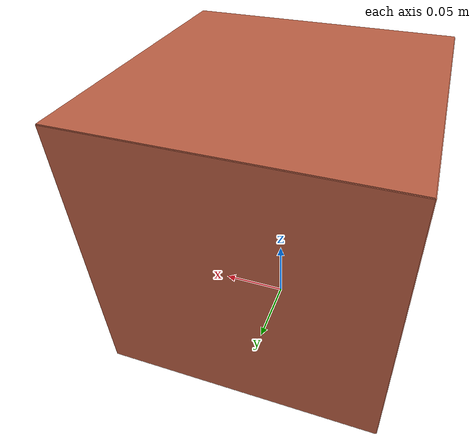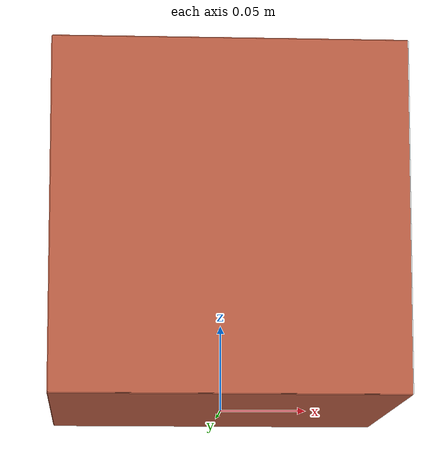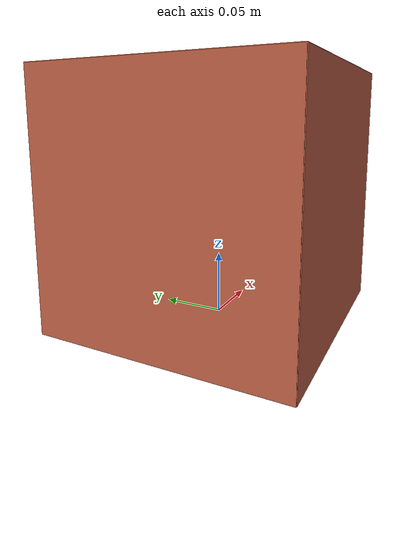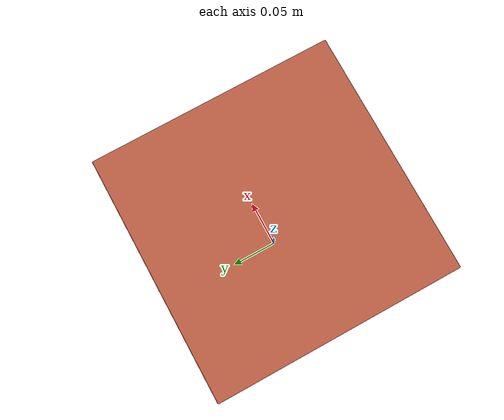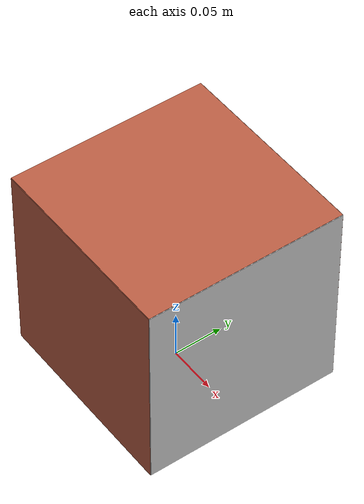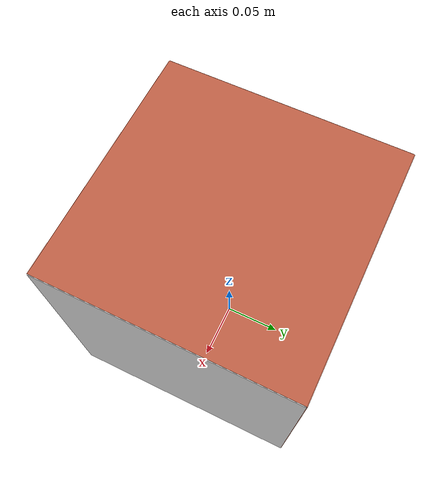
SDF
<?xml version="1.0"?>
<sdf version="1.9">
  <model name="box_1">
    <pose>0 0 0.1 0 0 0</pose>
    <static>false</static>

    <link name="link">
      <inertial>
        <mass>0.5</mass>
        <inertia>
          <ixx>0.006667</ixx>
          <iyy>0.006667</iyy>
          <izz>0.006667</izz>
          <ixy>0</ixy>
          <ixz>0</ixz>
          <iyz>0</iyz>
        </inertia>
      </inertial>

      <!-- Collision geometry -->
      <collision name="collision">
        <geometry>
          <box>
            <size>0.2 0.2 0.2</size>
          </box>
        </geometry>
        <surface>
          <friction>
            <ode>
              <mu>0.8</mu>
              <mu2>0.8</mu2>
            </ode>
          </friction>
          <contact>
            <ode>
              <kp>1e6</kp>
              <kd>100</kd>
            </ode>
          </contact>
        </surface>
      </collision>

      <!-- Visual geometry - Front face with ArUco tag -->
      <visual name="visual_front">
        <pose>0.1 0 0 0 0 0</pose>
        <geometry>
          <box>
            <size>0.001 0.2 0.2</size>
          </box>
        </geometry>
        <material>
          <ambient>1 1 1 1</ambient>
          <diffuse>1 1 1 1</diffuse>
          <specular>0.1 0.1 0.1 1</specular>
          <pbr>
            <metal>
              <albedo_map>aruco_582.png</albedo_map>
            </metal>
          </pbr>
        </material>
      </visual>

      <!-- Visual geometry - Back face (brick color) -->
      <visual name="visual_back">
        <pose>-0.1 0 0 0 0 0</pose>
        <geometry>
          <box>
            <size>0.001 0.2 0.2</size>
          </box>
        </geometry>
        <material>
          <ambient>0.6 0.3 0.2 1</ambient>
          <diffuse>0.7 0.35 0.25 1</diffuse>
          <specular>0.1 0.05 0.05 1</specular>
        </material>
      </visual>

      <!-- Visual geometry - Left face (brick color) -->
      <visual name="visual_left">
        <pose>0 0.1 0 0 0 0</pose>
        <geometry>
          <box>
            <size>0.2 0.001 0.2</size>
          </box>
        </geometry>
        <material>
          <ambient>0.6 0.3 0.2 1</ambient>
          <diffuse>0.7 0.35 0.25 1</diffuse>
          <specular>0.1 0.05 0.05 1</specular>
        </material>
      </visual>

      <!-- Visual geometry - Right face (brick color) -->
      <visual name="visual_right">
        <pose>0 -0.1 0 0 0 0</pose>
        <geometry>
          <box>
            <size>0.2 0.001 0.2</size>
          </box>
        </geometry>
        <material>
          <ambient>0.6 0.3 0.2 1</ambient>
          <diffuse>0.7 0.35 0.25 1</diffuse>
          <specular>0.1 0.05 0.05 1</specular>
        </material>
      </visual>

      <!-- Visual geometry - Top face (brick color) -->
      <visual name="visual_top">
        <pose>0 0 0.1 0 0 0</pose>
        <geometry>
          <box>
            <size>0.2 0.2 0.001</size>
          </box>
        </geometry>
        <material>
          <ambient>0.6 0.3 0.2 1</ambient>
          <diffuse>0.7 0.35 0.25 1</diffuse>
          <specular>0.1 0.05 0.05 1</specular>
        </material>
      </visual>

      <!-- Visual geometry - Bottom face (brick color) -->
      <visual name="visual_bottom">
        <pose>0 0 -0.1 0 0 0</pose>
        <geometry>
          <box>
            <size>0.2 0.2 0.001</size>
          </box>
        </geometry>
        <material>
          <ambient>0.6 0.3 0.2 1</ambient>
          <diffuse>0.7 0.35 0.25 1</diffuse>
          <specular>0.1 0.05 0.05 1</specular>
        </material>
      </visual>

    </link>
  </model>
</sdf>
